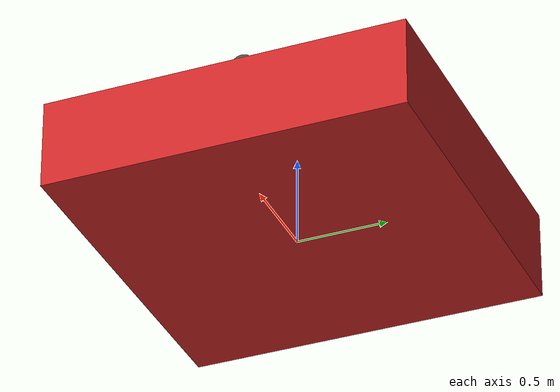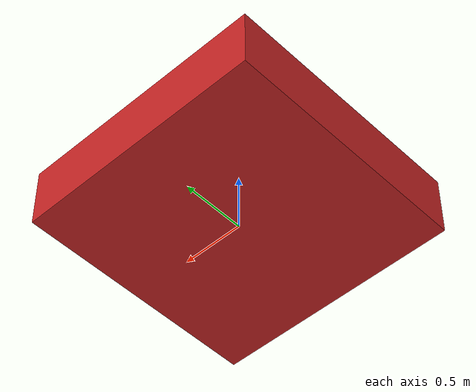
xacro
<?xml version="1.0"?>
<robot name="lws"
    xmlns:xacro="http://www.ros.org/wiki/xacro">

    <xacro:property name="base_length" value="2" />
    <xacro:property name="base_width" value="2" />
    <xacro:property name="base_height" value="0.5" />
    <xacro:property name="turret_base_radius" value="${base_width / 4}" />
    <xacro:property name="turret_base_length" value="${base_height / 1.75}" />
    <xacro:property name="turret_head_radius" value="${turret_base_radius / 8}" />
    <xacro:property name="turret_head_length" value="${1.5 * turret_base_radius}" />

    <link name="base_link">
        <visual>
            <geometry>
                <box size="${base_length} ${base_width} ${base_height}"/>
            </geometry>
            <origin xyz="0 0 ${base_height / 2.0}" rpy="0 0 0" />
            <material name="red" />
        </visual>
        <collision>
            <geometry>
                <box size="${base_length} ${base_width} ${base_height}"/>
            </geometry>
            <origin xyz="0 0 ${base_height / 2.0}" rpy="0 0 0" />
        </collision>
        <xacro:box_inertia m="50.0" x="${base_length}" y="${base_width}" z="${base_height}"
                           o_xyz="0 0 0" o_rpy="0 0 0" />
    </link>

    <link name="turret_base_link">
        <visual>
            <geometry>
                <cylinder radius="${turret_base_radius}" length="${turret_base_length}"/>
            </geometry>
            <origin xyz="0 0 0" rpy="0 0 0" />
            <material name="dark_gray" />
        </visual>
        <xacro:cylinder_inertia m="12.5" r="${turret_base_radius}" l="${turret_base_length}"
                                    o_xyz="0 0 0" o_rpy="0 0 0" />

    </link>

    <joint name="base_turret_base_joint" type="revolute">
        <parent link="base_link"/>
        <child link="turret_base_link"/>
        <origin xyz="0 0 ${base_height + turret_base_length / 2.0}" rpy="0 0 ${- pi / 4.0}"/>
        <axis xyz="0 0 1"/>
        <limit
            lower="${-40 * pi / 180.0}"
            upper="${40 * pi / 180.0}"
            effort="10.0"
            velocity="1.0"/>
        <dynamics damping="0.7" friction="0.0"/>
    </joint>

    <link name="turret_head_link">
        <visual>
            <geometry>
                <cylinder radius="${turret_head_radius}" length="${turret_head_length}"/>
            </geometry>
            <origin xyz="0 0 ${turret_head_length / 2.0}" rpy="0 0 0" />
            <material name="dark_gray" />
        </visual>
        <xacro:cylinder_inertia m="6.25" r="${turret_head_radius}" l="${turret_head_radius}"
                                    o_xyz="0 0 0" o_rpy="0 0 0" />

    </link>

    <joint name="base_turret_head_joint" type="revolute">
        <parent link="turret_base_link"/>
        <child link="turret_head_link"/>
        <origin xyz="0 0 0" rpy="0 ${pi / 2.0} ${pi / 4.0}"/>
        <axis xyz="0 1 0"/>
        <limit
            lower="${-45 * pi / 180.0}"
            upper="0"
            effort="10.0"
            velocity="1.0"/>
        <dynamics damping="0.7" friction="0.0"/>
    </joint>

</robot>
